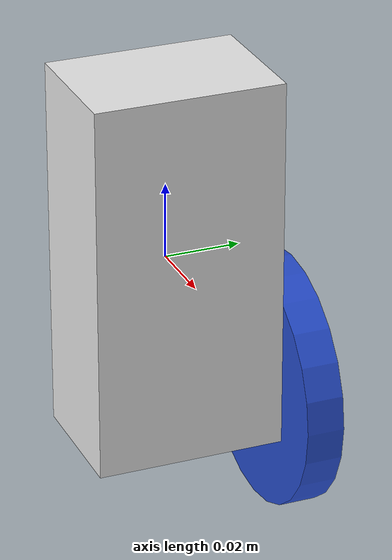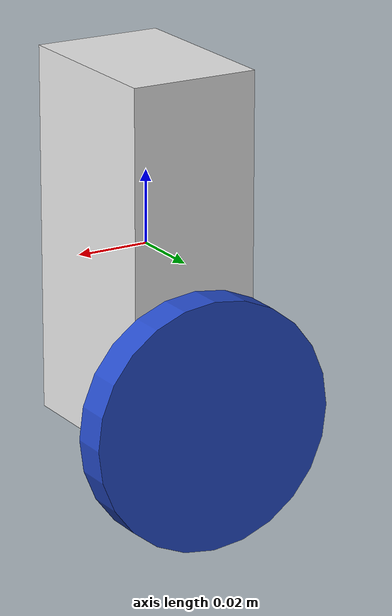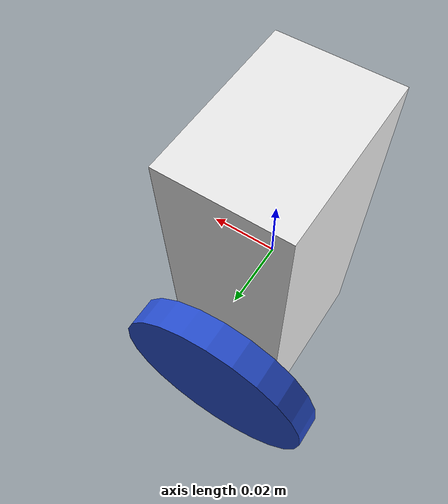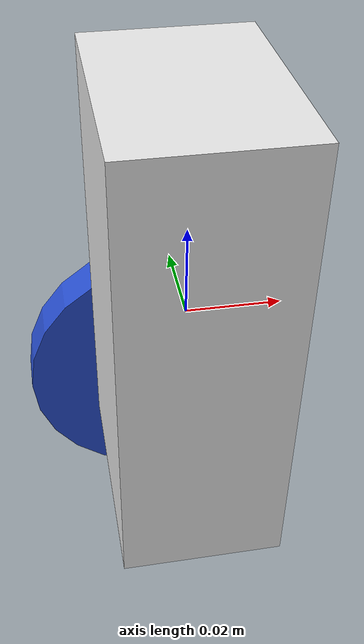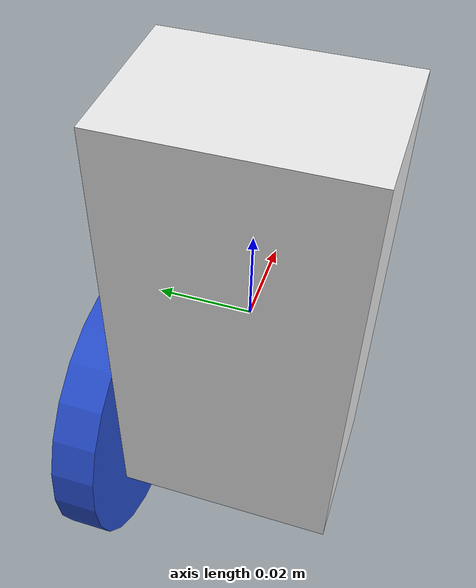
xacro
<?xml version="1.0"?>
<robot xmlns:xacro="http://www.ros.org/wiki/xacro" name="wheely_boi">
<!-- Constants -->
  <xacro:property name="wheel_separation" value="0.070" />
  <xacro:property name="wheel_radius" value="0.034" />
  <xacro:property name="wheel_width" value="0.010" />
  <xacro:property name="body_height" value="0.1" />
  <xacro:property name="body_width" value="0.050" />
  <xacro:property name="body_length" value="0.035" />

<!-- Materials -->
  <gazebo reference="edumip_body">
    <material>Gazebo/White</material>
    <mu1>0.2</mu1>
    <mu2>0.2</mu2>
  </gazebo>

  <gazebo reference="wheelR">
    <material>Gazebo/Red</material>
    <mu1>0.84</mu1>
    <mu2>0.84</mu2>
  </gazebo>

  <gazebo reference="wheelL">
    <material>Gazebo/Blue</material>
    <mu1>0.84</mu1>
    <mu2>0.84</mu2>
  </gazebo>

<!-- Physical properties -->
  <link name="edumip_body">
    <visual>
      <geometry>
        <box size="${body_length} ${body_width} ${body_height}"/>
      </geometry>
    </visual>

    <collision>
      <geometry>
        <box size="${body_length} ${body_width} ${body_height}"/>
      </geometry>
    </collision>

    <inertial>
      <mass value="0.18"/>
      <inertia ixx="6.0e-4" ixy="0" ixz="0" iyy="6.0e-4" iyz="0" izz="6.0e-4"/>
    </inertial>
  </link>

<!-- Macro definition of a wheel -->
  <xacro:macro name="wheel_link" params="name radius width mass">
    <link name="${name}">
      <visual>
        <geometry>
          <cylinder length="${width}" radius="${radius}"/>
        </geometry>
      </visual>

      <collision>
        <geometry>
          <cylinder length="${width}" radius="${radius}"/>
        </geometry>
      </collision>

      <inertial>
        <mass value="${mass}"/>
        <inertia ixx="1.75e-5" ixy="0.0" ixz="0.0" iyy="1.75e-5" iyz="0.0" izz="1.75e-5"/>
      </inertial>
    </link>
  </xacro:macro>

<!-- Macro usage -->
  <xacro:wheel_link name="wheelL" radius="${wheel_radius}" width="${wheel_width}" mass="0.03"/>
<!-- STEP 1: Create a wheel named wheelR -->

<!-- Joints -->
  <joint name="jointL" type="continuous">
    <parent link="edumip_body"/>
    <child link="wheelL"/>
    <axis xyz="0 0 1"/>
    <origin xyz="0 ${body_width/2 + wheel_width/2} -${body_height/2 - 0.01}" rpy="${pi/2} 0 0" />
    <dynamics friction="0.1"/>
  </joint>

<!-- STEP 2: Create jointR, which is on the other side of the y axis from jointL -->

<!-- Plugin Declaration -->
  <gazebo>
    <plugin name="wb_plugin" filename="libwb_plugin.so"> </plugin>
  </gazebo>

</robot>
